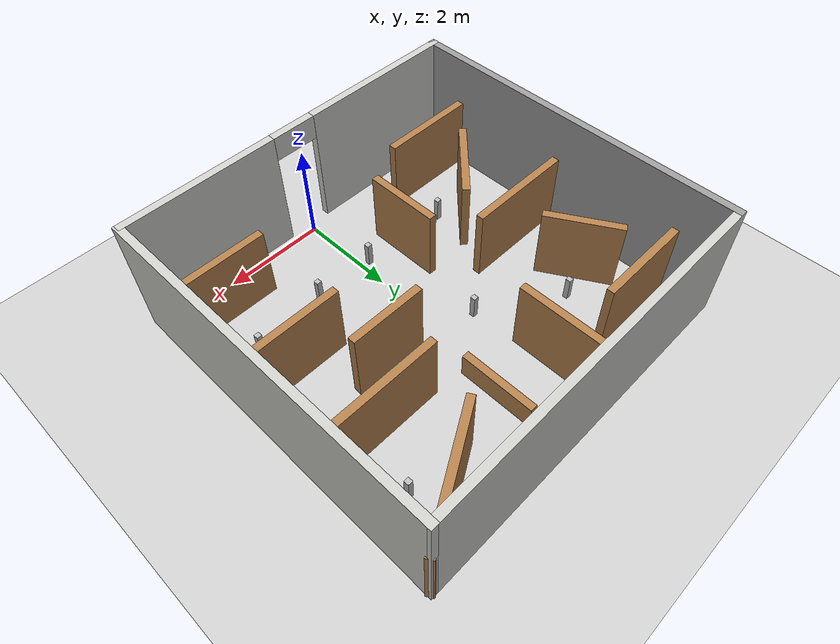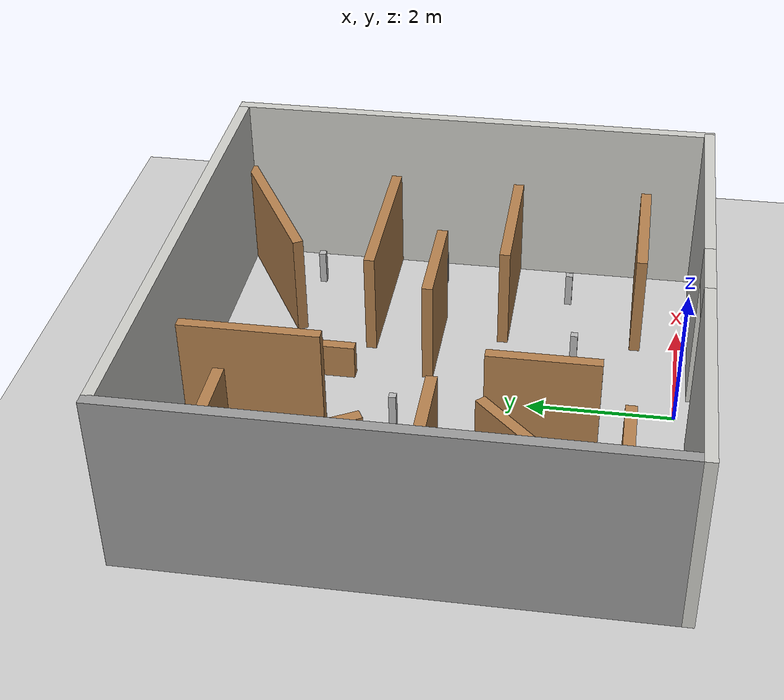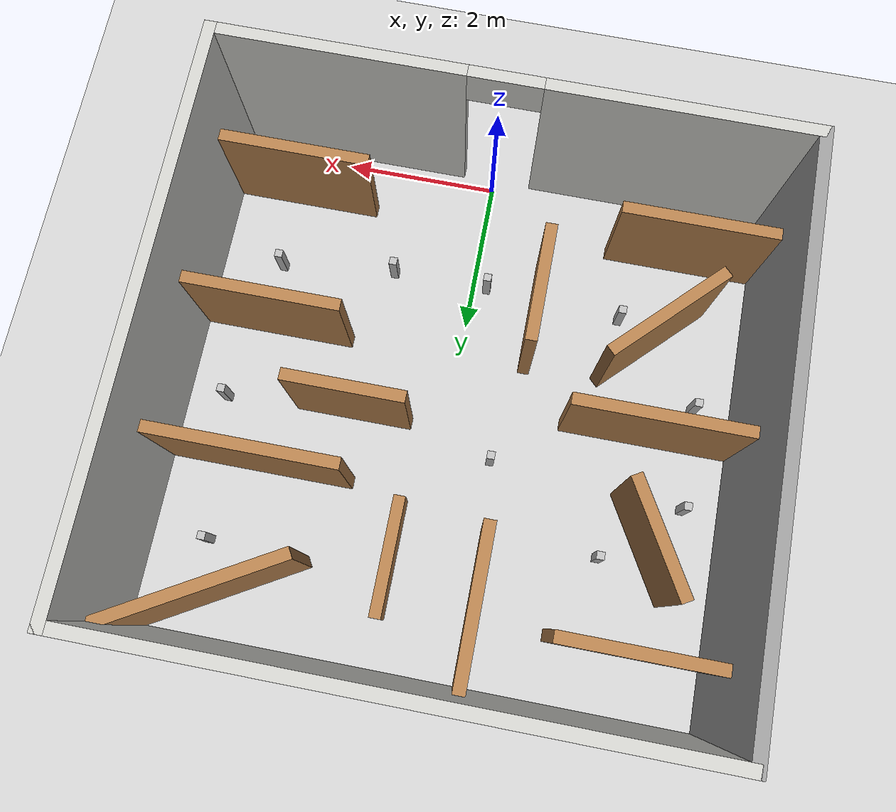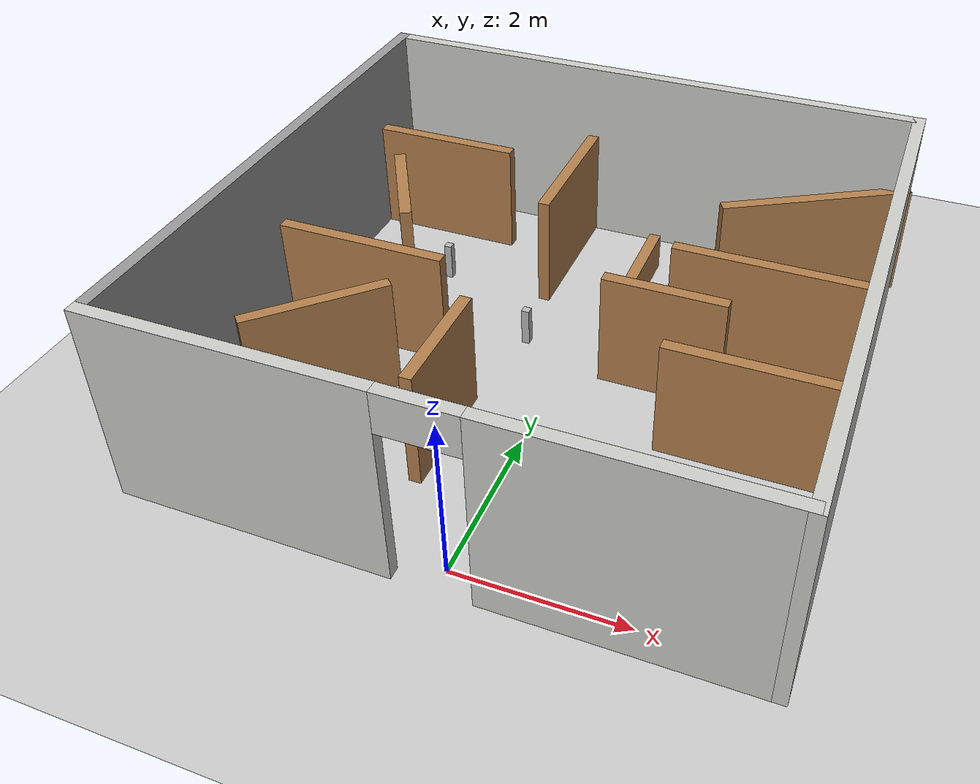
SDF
<sdf version="1.7">
 <world name="default">
  <light name="sun" type="directional">
   <pose>0 0 10 0 -0 0</pose>
   <diffuse>0.8 0.8 0.8 1</diffuse>
   <specular>0.2 0.2 0.2 1</specular>
   <attenuation>
    <range>1000</range>
    <constant>0.9</constant>
    <linear>0.01</linear>
    <quadratic>0.001</quadratic>
   </attenuation>
   <direction>-0.5 0.1 -0.9</direction>
   <spot><inner_angle>0</inner_angle><outer_angle>0</outer_angle><falloff>0</falloff></spot>
  </light>
  <model name="ground_plane">
   <static>1</static>
   <link name="link">
    <collision name="collision">
     <geometry><plane><normal>0 0 1</normal><size>100 100</size></plane></geometry>
     <surface>
      <contact><collide_bitmask>65535</collide_bitmask></contact>
      <friction><ode><mu>100</mu><mu2>50</mu2></ode></friction>
     </surface>
    </collision>
    <visual name="visual">
     <cast_shadows>0</cast_shadows>
     <geometry><plane><normal>0 0 1</normal><size>100 100</size></plane></geometry>
     <material>
      <script><uri>file://media/materials/scripts/gazebo.material</uri><name>Gazebo/Grey</name></script>
     </material>
    </visual>
   </link>
  </model>
  <gravity>0 0 -9.8</gravity>
  <magnetic_field>6e-06 2.3e-05 -4.2e-05</magnetic_field>
  <atmosphere type="adiabatic"/>
  <physics type="ode">
   <max_step_size>0.001</max_step_size>
   <real_time_factor>1</real_time_factor>
   <real_time_update_rate>1000</real_time_update_rate>
  </physics>
  <scene><ambient>0.4 0.4 0.4 1</ambient><background>0.7 0.7 0.7 1</background><shadows>1</shadows></scene>
  <spherical_coordinates>
   <surface_model>EARTH_WGS84</surface_model>
   <latitude_deg>0</latitude_deg>
   <longitude_deg>0</longitude_deg>
   <elevation>0</elevation>
   <heading_deg>0</heading_deg>
  </spherical_coordinates>
  <model name="world">
   <pose>-0.107745 3.60125 0 0 -0 0</pose>
   <link name="Wall_0">
    <collision name="Wall_0_Collision">
     <geometry><box><size>7 0.15 2.5</size></box></geometry>
     <pose>0 0 1.25 0 -0 0</pose>
    </collision>
    <visual name="Wall_0_Visual">
     <pose>0 0 1.25 0 -0 0</pose>
     <geometry><box><size>7 0.15 2.5</size></box></geometry>
     <material>
      <script><uri>file://media/materials/scripts/gazebo.material</uri><name>Gazebo/Grey</name></script>
      <ambient>1 1 1 1</ambient>
     </material>
     <meta><layer>0</layer></meta>
    </visual>
    <pose>-3.57516 -0.396839 0 0 -0 -1.57082</pose>
   </link>
   <link name="Wall_1">
    <pose>-0.025161 -3.82184 0 0 -0 4e-05</pose>
    <visual name="Wall_1_Visual_0">
     <pose>-1.9872 0 1.25 0 -0 0</pose>
     <geometry><box><size>3.27579 0.15 2.5</size></box></geometry>
     <material>
      <script><uri>file://media/materials/scripts/gazebo.material</uri><name>Gazebo/CeilingTiled</name></script>
      <ambient>1 1 1 1</ambient>
     </material>
     <meta><layer>0</layer></meta>
    </visual>
    <collision name="Wall_1_Collision_0">
     <geometry><box><size>3.27579 0.15 2.5</size></box></geometry>
     <pose>-1.9872 0 1.25 0 -0 0</pose>
    </collision>
    <visual name="Wall_1_Visual_1">
     <pose>2.08789 0 1.25 0 -0 0</pose>
     <geometry><box><size>3.0744 0.15 2.5</size></box></geometry>
     <material>
      <script><uri>file://media/materials/scripts/gazebo.material</uri><name>Gazebo/CeilingTiled</name></script>
      <ambient>1 1 1 1</ambient>
     </material>
     <meta><layer>0</layer></meta>
    </visual>
    <collision name="Wall_1_Collision_1">
     <geometry><box><size>3.0744 0.15 2.5</size></box></geometry>
     <pose>2.08789 0 1.25 0 -0 0</pose>
    </collision>
    <visual name="Wall_1_Visual_2">
     <pose>0.100694 0 2.25 0 -0 0</pose>
     <geometry><box><size>0.9 0.15 0.5</size></box></geometry>
     <material>
      <script><uri>file://media/materials/scripts/gazebo.material</uri><name>Gazebo/CeilingTiled</name></script>
      <ambient>1 1 1 1</ambient>
     </material>
     <meta><layer>0</layer></meta>
    </visual>
    <collision name="Wall_1_Collision_2">
     <geometry><box><size>0.9 0.15 0.5</size></box></geometry>
     <pose>0.100694 0 2.25 0 -0 0</pose>
    </collision>
   </link>
   <link name="Wall_2">
    <collision name="Wall_2_Collision">
     <geometry><box><size>7 0.15 2.5</size></box></geometry>
     <pose>0 0 1.25 0 -0 0</pose>
    </collision>
    <visual name="Wall_2_Visual">
     <pose>0 0 1.25 0 -0 0</pose>
     <geometry><box><size>7 0.15 2.5</size></box></geometry>
     <material>
      <script><uri>file://media/materials/scripts/gazebo.material</uri><name>Gazebo/CeilingTiled</name></script>
      <ambient>1 1 1 1</ambient>
     </material>
     <meta><layer>0</layer></meta>
    </visual>
    <pose>3.55657 -0.396839 0 0 -0 1.57337</pose>
   </link>
   <link name="Wall_3">
    <collision name="Wall_3_Collision">
     <geometry><box><size>7.27281 0.15 2.5</size></box></geometry>
     <pose>0 0 1.25 0 -0 0</pose>
    </collision>
    <visual name="Wall_3_Visual">
     <pose>0 0 1.25 0 -0 0</pose>
     <geometry><box><size>7.27281 0.15 2.5</size></box></geometry>
     <material>
      <script><uri>file://media/materials/scripts/gazebo.material</uri><name>Gazebo/CeilingTiled</name></script>
      <ambient>1 1 1 1</ambient>
     </material>
     <meta><layer>0</layer></meta>
    </visual>
    <pose>-0.013661 3.02816 0 0 -0 3.14155</pose>
   </link>
   <link name="Wall_30">
    <collision name="Wall_30_Collision">
     <geometry><box><size>2.25 0.15 1.5</size></box></geometry>
     <pose>0 0 0.75 0 -0 0</pose>
    </collision>
    <visual name="Wall_30_Visual">
     <pose>0 0 0.75 0 -0 0</pose>
     <geometry><box><size>2.25 0.15 1.5</size></box></geometry>
     <material>
      <script><uri>file://media/materials/scripts/gazebo.material</uri><name>Gazebo/Wood</name></script>
      <ambient>1 1 1 1</ambient>
     </material>
     <meta><layer>0</layer></meta>
    </visual>
    <pose>-2.45526 -0.50798 0 0 -0 0</pose>
   </link>
   <link name="Wall_32">
    <collision name="Wall_32_Collision">
     <geometry><box><size>2.5 0.15 1.5</size></box></geometry>
     <pose>0 0 0.75 0 -0 0</pose>
    </collision>
    <visual name="Wall_32_Visual">
     <pose>0 0 0.75 0 -0 0</pose>
     <geometry><box><size>2.5 0.15 1.5</size></box></geometry>
     <material>
      <script><uri>file://media/materials/scripts/gazebo.material</uri><name>Gazebo/Wood</name></script>
      <ambient>1 1 1 1</ambient>
     </material>
     <meta><layer>0</layer></meta>
    </visual>
    <pose>2.37474 0.741021 0 0 -0 3.14159</pose>
   </link>
   <link name="Wall_35">
    <collision name="Wall_35_Collision">
     <geometry><box><size>1.5 0.15 1.5</size></box></geometry>
     <pose>0 0 0.75 0 -0 0</pose>
    </collision>
    <visual name="Wall_35_Visual">
     <pose>0 0 0.75 0 -0 0</pose>
     <geometry><box><size>1.5 0.15 1.5</size></box></geometry>
     <material>
      <script><uri>file://media/materials/scripts/gazebo.material</uri><name>Gazebo/Wood</name></script>
      <ambient>1 1 1 1</ambient>
     </material>
     <meta><layer>0</layer></meta>
    </visual>
    <pose>1.29774 -0.16098 0 0 -0 3.14159</pose>
   </link>
   <link name="Wall_37">
    <collision name="Wall_37_Collision">
     <geometry><box><size>2 0.15 1.5</size></box></geometry>
     <pose>0 0 0.75 0 -0 0</pose>
    </collision>
    <visual name="Wall_37_Visual">
     <pose>0 0 0.75 0 -0 0</pose>
     <geometry><box><size>2 0.15 1.5</size></box></geometry>
     <material>
      <script><uri>file://media/materials/scripts/gazebo.material</uri><name>Gazebo/Wood</name></script>
      <ambient>1 1 1 1</ambient>
     </material>
     <meta><layer>0</layer></meta>
    </visual>
    <pose>2.53274 -1.10898 0 0 -0 3.14159</pose>
   </link>
   <link name="Wall_41">
    <collision name="Wall_41_Collision">
     <geometry><box><size>1.75 0.15 1.5</size></box></geometry>
     <pose>0 0 0.75 0 -0 0</pose>
    </collision>
    <visual name="Wall_41_Visual">
     <pose>0 0 0.75 0 -0 0</pose>
     <geometry><box><size>1.75 0.15 1.5</size></box></geometry>
     <material>
      <script><uri>file://media/materials/scripts/gazebo.material</uri><name>Gazebo/Wood</name></script>
      <ambient>1 1 1 1</ambient>
     </material>
     <meta><layer>0</layer></meta>
    </visual>
    <pose>-2.30415 -1.77321 0 0 -0 0.785398</pose>
   </link>
   <link name="Wall_43">
    <collision name="Wall_43_Collision">
     <geometry><box><size>2 0.15 1.5</size></box></geometry>
     <pose>0 0 0.75 0 -0 0</pose>
    </collision>
    <visual name="Wall_43_Visual">
     <pose>0 0 0.75 0 -0 0</pose>
     <geometry><box><size>2 0.15 1.5</size></box></geometry>
     <material>
      <script><uri>file://media/materials/scripts/gazebo.material</uri><name>Gazebo/Wood</name></script>
      <ambient>1 1 1 1</ambient>
     </material>
     <meta><layer>0</layer></meta>
    </visual>
    <pose>-2.55726 -2.98298 0 0 -0 0</pose>
   </link>
   <link name="Wall_45">
    <collision name="Wall_45_Collision">
     <geometry><box><size>1.5 0.15 1.5</size></box></geometry>
     <pose>0 0 0.75 0 -0 0</pose>
    </collision>
    <visual name="Wall_45_Visual">
     <pose>0 0 0.75 0 -0 0</pose>
     <geometry><box><size>1.5 0.15 1.5</size></box></geometry>
     <material>
      <script><uri>file://media/materials/scripts/gazebo.material</uri><name>Gazebo/Wood</name></script>
      <ambient>1 1 1 1</ambient>
     </material>
     <meta><layer>0</layer></meta>
    </visual>
    <pose>-0.752255 -1.85398 0 0 -0 -1.5708</pose>
   </link>
   <link name="Wall_47">
    <collision name="Wall_47_Collision">
     <geometry><box><size>2 0.15 1.5</size></box></geometry>
     <pose>0 0 0.75 0 -0 0</pose>
    </collision>
    <visual name="Wall_47_Visual">
     <pose>0 0 0.75 0 -0 0</pose>
     <geometry><box><size>2 0.15 1.5</size></box></geometry>
     <material>
      <script><uri>file://media/materials/scripts/gazebo.material</uri><name>Gazebo/Wood</name></script>
      <ambient>1 1 1 1</ambient>
     </material>
     <meta><layer>0</layer></meta>
    </visual>
    <pose>2.60074 -3.00598 0 0 -0 0</pose>
   </link>
   <link name="Wall_49">
    <collision name="Wall_49_Collision">
     <geometry><box><size>1.5 0.15 1.5</size></box></geometry>
     <pose>0 0 0.75 0 -0 0</pose>
    </collision>
    <visual name="Wall_49_Visual">
     <pose>0 0 0.75 0 -0 0</pose>
     <geometry><box><size>1.5 0.15 1.5</size></box></geometry>
     <material>
      <script><uri>file://media/materials/scripts/gazebo.material</uri><name>Gazebo/Wood</name></script>
      <ambient>1 1 1 1</ambient>
     </material>
     <meta><layer>0</layer></meta>
    </visual>
    <pose>-2.56575 0.873521 0 0 -0 -1.04715</pose>
   </link>
   <link name="Wall_51">
    <collision name="Wall_51_Collision">
     <geometry><box><size>2 0.15 1.5</size></box></geometry>
     <pose>0 0 0.75 0 -0 0</pose>
    </collision>
    <visual name="Wall_51_Visual">
     <pose>0 0 0.75 0 -0 0</pose>
     <geometry><box><size>2 0.15 1.5</size></box></geometry>
     <material>
      <script><uri>file://media/materials/scripts/gazebo.material</uri><name>Gazebo/Wood</name></script>
      <ambient>1 1 1 1</ambient>
     </material>
     <meta><layer>0</layer></meta>
    </visual>
    <pose>-2.55726 2.15202 0 0 -0 0</pose>
   </link>
   <link name="Wall_53">
    <collision name="Wall_53_Collision">
     <geometry><box><size>2 0.15 1.5</size></box></geometry>
     <pose>0 0 0.75 0 -0 0</pose>
    </collision>
    <visual name="Wall_53_Visual">
     <pose>0 0 0.75 0 -0 0</pose>
     <geometry><box><size>2 0.15 1.5</size></box></geometry>
     <material>
      <script><uri>file://media/materials/scripts/gazebo.material</uri><name>Gazebo/Wood</name></script>
      <ambient>1 1 1 1</ambient>
     </material>
     <meta><layer>0</layer></meta>
    </visual>
    <pose>-0.660255 2.03702 0 0 -0 -1.5708</pose>
   </link>
   <link name="Wall_55">
    <collision name="Wall_55_Collision">
     <geometry><box><size>2.5 0.15 1.5</size></box></geometry>
     <pose>0 0 0.75 0 -0 0</pose>
    </collision>
    <visual name="Wall_55_Visual">
     <pose>0 0 0.75 0 -0 0</pose>
     <geometry><box><size>2.5 0.15 1.5</size></box></geometry>
     <material>
      <script><uri>file://media/materials/scripts/gazebo.material</uri><name>Gazebo/Wood</name></script>
      <ambient>1 1 1 1</ambient>
     </material>
     <meta><layer>0</layer></meta>
    </visual>
    <pose>2.53024 2.44052 0 0 -0 -2.61796</pose>
   </link>
   <link name="Wall_57">
    <collision name="Wall_57_Collision">
     <geometry><box><size>1.5 0.15 0.5</size></box></geometry>
     <pose>0 0 0.25 0 -0 0</pose>
    </collision>
    <visual name="Wall_57_Visual">
     <pose>0 0 0.25 0 -0 0</pose>
     <geometry><box><size>1.5 0.15 0.5</size></box></geometry>
     <material>
      <script><uri>file://media/materials/scripts/gazebo.material</uri><name>Gazebo/Wood</name></script>
      <ambient>1 1 1 1</ambient>
     </material>
     <meta><layer>0</layer></meta>
    </visual>
    <pose>0.473745 1.59302 0 0 -0 -1.5708</pose>
   </link>
   <static>1</static>
  </model>
  <model name="grab_bar">
   <pose>-3.1343 3.91118 0.25 -2e-06 1e-06 -4.4e-05</pose>
   <link name="link">
    <collision name="collision">
     <laser_retro>255</laser_retro>
     <geometry><box><size>0.1 0.1 0.5</size></box></geometry>
    </collision>
    <visual name="visual">
     <laser_retro>255</laser_retro>
     <geometry><box><size>0.1 0.1 0.5</size></box></geometry>
    </visual>
    <inertial>
     <inertia><ixx>1</ixx><ixy>0</ixy><ixz>0</ixz><iyy>1</iyy><iyz>0</iyz><izz>1</izz></inertia>
     <mass>1</mass>
    </inertial>
   </link>
  </model>
  <model name="grab_bar_0">
   <pose>-0.182181 1.44201 0.25 -1e-06 -2e-06 -3.1e-05</pose>
   <link name="link">
    <collision name="collision">
     <laser_retro>255</laser_retro>
     <geometry><box><size>0.1 0.1 0.5</size></box></geometry>
    </collision>
    <visual name="visual">
     <laser_retro>255</laser_retro>
     <geometry><box><size>0.1 0.1 0.5</size></box></geometry>
    </visual>
    <inertial>
     <inertia><ixx>1</ixx><ixy>0</ixy><ixz>0</ixz><iyy>1</iyy><iyz>0</iyz><izz>1</izz></inertia>
     <mass>1</mass>
    </inertial>
   </link>
  </model>
  <model name="grab_bar_1">
   <pose>-0.645583 3.73978 0.250003 2e-06 6.5e-05 -3.5e-05</pose>
   <link name="link">
    <collision name="collision">
     <laser_retro>255</laser_retro>
     <geometry><box><size>0.1 0.1 0.5</size></box></geometry>
    </collision>
    <visual name="visual">
     <laser_retro>255</laser_retro>
     <geometry><box><size>0.1 0.1 0.5</size></box></geometry>
    </visual>
    <inertial>
     <inertia><ixx>1</ixx><ixy>0</ixy><ixz>0</ixz><iyy>1</iyy><iyz>0</iyz><izz>1</izz></inertia>
     <mass>1</mass>
    </inertial>
   </link>
  </model>
  <model name="grab_bar_2">
   <pose>2.63909 5.3747 0.25 7e-06 -1e-06 -5.6e-05</pose>
   <link name="link">
    <collision name="collision">
     <laser_retro>255</laser_retro>
     <geometry><box><size>0.1 0.1 0.5</size></box></geometry>
    </collision>
    <visual name="visual">
     <laser_retro>255</laser_retro>
     <geometry><box><size>0.1 0.1 0.5</size></box></geometry>
    </visual>
    <inertial>
     <inertia><ixx>1</ixx><ixy>0</ixy><ixz>0</ixz><iyy>1</iyy><iyz>0</iyz><izz>1</izz></inertia>
     <mass>1</mass>
    </inertial>
   </link>
  </model>
  <model name="grab_bar_3">
   <pose>2.86148 3.53246 0.250016 1e-06 0.00051 -5.4e-05</pose>
   <link name="link">
    <collision name="collision">
     <laser_retro>255</laser_retro>
     <geometry><box><size>0.1 0.1 0.5</size></box></geometry>
    </collision>
    <visual name="visual">
     <laser_retro>255</laser_retro>
     <geometry><box><size>0.1 0.1 0.5</size></box></geometry>
    </visual>
    <inertial>
     <inertia><ixx>1</ixx><ixy>0</ixy><ixz>0</ixz><iyy>1</iyy><iyz>0</iyz><izz>1</izz></inertia>
     <mass>1</mass>
    </inertial>
   </link>
  </model>
  <model name="grab_bar_4">
   <pose>2.56562 1.62557 0.250016 -1e-06 0.000314 -3.7e-05</pose>
   <link name="link">
    <collision name="collision">
     <laser_retro>255</laser_retro>
     <geometry><box><size>0.1 0.1 0.5</size></box></geometry>
    </collision>
    <visual name="visual">
     <laser_retro>255</laser_retro>
     <geometry><box><size>0.1 0.1 0.5</size></box></geometry>
    </visual>
    <inertial>
     <inertia><ixx>1</ixx><ixy>0</ixy><ixz>0</ixz><iyy>1</iyy><iyz>0</iyz><izz>1</izz></inertia>
     <mass>1</mass>
    </inertial>
   </link>
  </model>
  <model name="grab_bar_5">
   <pose>-3.09895 2.59019 0.250132 1e-06 -0.002649 -5.9e-05</pose>
   <link name="link">
    <collision name="collision">
     <laser_retro>255</laser_retro>
     <geometry><box><size>0.1 0.1 0.5</size></box></geometry>
    </collision>
    <visual name="visual">
     <laser_retro>255</laser_retro>
     <geometry><box><size>0.1 0.1 0.5</size></box></geometry>
    </visual>
    <inertial>
     <inertia><ixx>1</ixx><ixy>0</ixy><ixz>0</ixz><iyy>1</iyy><iyz>0</iyz><izz>1</izz></inertia>
     <mass>1</mass>
    </inertial>
   </link>
  </model>
  <model name="grab_bar_6">
   <pose>-1.9771 1.54731 0.250179 -1e-06 0.003604 -3.3e-05</pose>
   <link name="link">
    <collision name="collision">
     <laser_retro>255</laser_retro>
     <geometry><box><size>0.1 0.1 0.5</size></box></geometry>
    </collision>
    <visual name="visual">
     <laser_retro>255</laser_retro>
     <geometry><box><size>0.1 0.1 0.5</size></box></geometry>
    </visual>
    <inertial>
     <inertia><ixx>1</ixx><ixy>0</ixy><ixz>0</ixz><iyy>1</iyy><iyz>0</iyz><izz>1</izz></inertia>
     <mass>1</mass>
    </inertial>
   </link>
  </model>
  <model name="grab_bar_7">
   <pose>-2.17107 4.70303 0.250219 5.1e-05 0.004371 -4.4e-05</pose>
   <link name="link">
    <collision name="collision">
     <laser_retro>255</laser_retro>
     <geometry><box><size>0.1 0.1 0.5</size></box></geometry>
    </collision>
    <visual name="visual">
     <laser_retro>255</laser_retro>
     <geometry><box><size>0.1 0.1 0.5</size></box></geometry>
    </visual>
    <inertial>
     <inertia><ixx>1</ixx><ixy>0</ixy><ixz>0</ixz><iyy>1</iyy><iyz>0</iyz><izz>1</izz></inertia>
     <mass>1</mass>
    </inertial>
   </link>
  </model>
  <model name="grab_bar_8">
   <pose>1.0696 1.44881 0.250312 -0.000923 0.005451 -5.4e-05</pose>
   <link name="link">
    <collision name="collision">
     <laser_retro>255</laser_retro>
     <geometry><box><size>0.1 0.1 0.5</size></box></geometry>
    </collision>
    <visual name="visual">
     <laser_retro>255</laser_retro>
     <geometry><box><size>0.1 0.1 0.5</size></box></geometry>
    </visual>
    <inertial>
     <inertia><ixx>1</ixx><ixy>0</ixy><ixz>0</ixz><iyy>1</iyy><iyz>0</iyz><izz>1</izz></inertia>
     <mass>1</mass>
    </inertial>
   </link>
  </model>
 </world>
</sdf>
